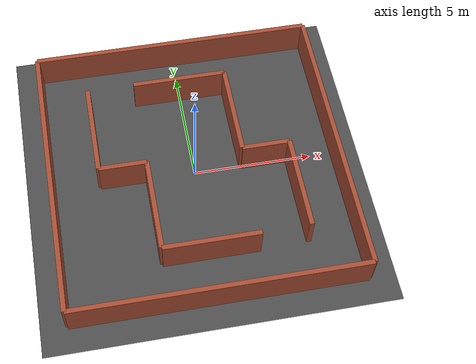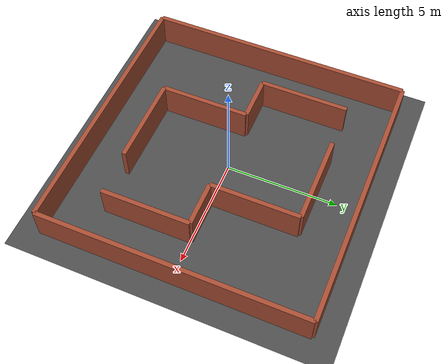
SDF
<?xml version="1.0" ?>
<sdf version="1.6">
  <world name="maze_world">
    <!-- Scene settings for realistic sky, clouds, and ambient lighting -->
    <scene>
      <sky>
        <time>12.0</time>
        <clouds>
          <speed>12</speed>
          <humidity>0.6</humidity>
          <mean_size>0.6</mean_size>
          <ambient>0.8 0.8 0.8 1.0</ambient>
        </clouds>
      </sky>
      <ambient>0.5 0.5 0.5 1.0</ambient>
      <background>0.5 0.7 0.9 1.0</background>
      <shadows>true</shadows>
    </scene>

    <!-- A global light source -->
    <include>
      <uri>model://sun</uri>
    </include>

    <!-- A ground plane with road texture -->
    <model name="road_ground_plane">
      <static>true</static>
      <link name="link">
        <collision name="collision">
          <geometry>
            <plane>
              <normal>0 0 1</normal>
              <size>100 100</size>
            </plane>
          </geometry>
          <surface>
            <contact>
              <collide_bitmask>0xffff</collide_bitmask>
            </contact>
            <friction>
              <ode>
                <mu>100</mu>
                <mu2>50</mu2>
              </ode>
            </friction>
          </surface>
        </collision>
        <visual name="visual">
          <cast_shadows>false</cast_shadows>
          <geometry>
            <plane>
              <normal>0 0 1</normal>
              <size>100 100</size>
            </plane>
          </geometry>
          <material>
            <script>
              <uri>model://autonomous_car/media/materials/scripts/road.material</uri>
              <name>Road/Asphalt</name>
            </script>
          </material>
        </visual>
      </link>
    </model>

    <!-- Outer Bounding Walls (Brick Texture) -->
    <!-- North Wall -->
    <model name="outer_north_wall">
      <static>true</static>
      <pose>6.0 0.0 0.75 0 0 0</pose>
      <link name="link">
        <collision name="collision">
          <geometry><box><size>0.2 12.0 1.5</size></box></geometry>
        </collision>
        <visual name="visual">
          <geometry><box><size>0.2 12.0 1.5</size></box></geometry>
          <material>
            <script>
              <uri>file://media/materials/scripts/gazebo.material</uri>
              <name>Gazebo/Bricks</name>
            </script>
          </material>
        </visual>
      </link>
    </model>

    <!-- South Wall -->
    <model name="outer_south_wall">
      <static>true</static>
      <pose>-6.0 0.0 0.75 0 0 0</pose>
      <link name="link">
        <collision name="collision">
          <geometry><box><size>0.2 12.0 1.5</size></box></geometry>
        </collision>
        <visual name="visual">
          <geometry><box><size>0.2 12.0 1.5</size></box></geometry>
          <material>
            <script>
              <uri>file://media/materials/scripts/gazebo.material</uri>
              <name>Gazebo/Bricks</name>
            </script>
          </material>
        </visual>
      </link>
    </model>

    <!-- East Wall -->
    <model name="outer_east_wall">
      <static>true</static>
      <pose>0.0 6.0 0.75 0 0 0</pose>
      <link name="link">
        <collision name="collision">
          <geometry><box><size>12.0 0.2 1.5</size></box></geometry>
        </collision>
        <visual name="visual">
          <geometry><box><size>12.0 0.2 1.5</size></box></geometry>
          <material>
            <script>
              <uri>file://media/materials/scripts/gazebo.material</uri>
              <name>Gazebo/Bricks</name>
            </script>
          </material>
        </visual>
      </link>
    </model>

    <!-- West Wall -->
    <model name="outer_west_wall">
      <static>true</static>
      <pose>0.0 -6.0 0.75 0 0 0</pose>
      <link name="link">
        <collision name="collision">
          <geometry><box><size>12.0 0.2 1.5</size></box></geometry>
        </collision>
        <visual name="visual">
          <geometry><box><size>12.0 0.2 1.5</size></box></geometry>
          <material>
            <script>
              <uri>file://media/materials/scripts/gazebo.material</uri>
              <name>Gazebo/Bricks</name>
            </script>
          </material>
        </visual>
      </link>
    </model>

    <!-- Inner Maze Walls (Brick Texture) -->
    <!-- Wall 1 (Vertical) -->
    <model name="inner_wall_1">
      <static>true</static>
      <pose>2.0 2.0 0.75 0 0 0</pose>
      <link name="link">
        <collision name="collision">
          <geometry><box><size>0.2 4.0 1.5</size></box></geometry>
        </collision>
        <visual name="visual">
          <geometry><box><size>0.2 4.0 1.5</size></box></geometry>
          <material>
            <script>
              <uri>file://media/materials/scripts/gazebo.material</uri>
              <name>Gazebo/Bricks</name>
            </script>
          </material>
        </visual>
      </link>
    </model>

    <!-- Wall 2 (Vertical) -->
    <model name="inner_wall_2">
      <static>true</static>
      <pose>-2.0 -2.0 0.75 0 0 0</pose>
      <link name="link">
        <collision name="collision">
          <geometry><box><size>0.2 4.0 1.5</size></box></geometry>
        </collision>
        <visual name="visual">
          <geometry><box><size>0.2 4.0 1.5</size></box></geometry>
          <material>
            <script>
              <uri>file://media/materials/scripts/gazebo.material</uri>
              <name>Gazebo/Bricks</name>
            </script>
          </material>
        </visual>
      </link>
    </model>

    <!-- Wall 3 (Vertical) -->
    <model name="inner_wall_3">
      <static>true</static>
      <pose>4.0 -2.0 0.75 0 0 0</pose>
      <link name="link">
        <collision name="collision">
          <geometry><box><size>0.2 4.0 1.5</size></box></geometry>
        </collision>
        <visual name="visual">
          <geometry><box><size>0.2 4.0 1.5</size></box></geometry>
          <material>
            <script>
              <uri>file://media/materials/scripts/gazebo.material</uri>
              <name>Gazebo/Bricks</name>
            </script>
          </material>
        </visual>
      </link>
    </model>

    <!-- Wall 4 (Vertical) -->
    <model name="inner_wall_4">
      <static>true</static>
      <pose>-4.0 2.0 0.75 0 0 0</pose>
      <link name="link">
        <collision name="collision">
          <geometry><box><size>0.2 4.0 1.5</size></box></geometry>
        </collision>
        <visual name="visual">
          <geometry><box><size>0.2 4.0 1.5</size></box></geometry>
          <material>
            <script>
              <uri>file://media/materials/scripts/gazebo.material</uri>
              <name>Gazebo/Bricks</name>
            </script>
          </material>
        </visual>
      </link>
    </model>

    <!-- Wall 5 (Horizontal) -->
    <model name="inner_wall_5">
      <static>true</static>
      <pose>0.0 4.0 0.75 0 0 0</pose>
      <link name="link">
        <collision name="collision">
          <geometry><box><size>4.0 0.2 1.5</size></box></geometry>
        </collision>
        <visual name="visual">
          <geometry><box><size>4.0 0.2 1.5</size></box></geometry>
          <material>
            <script>
              <uri>file://media/materials/scripts/gazebo.material</uri>
              <name>Gazebo/Bricks</name>
            </script>
          </material>
        </visual>
      </link>
    </model>

    <!-- Wall 6 (Horizontal) -->
    <model name="inner_wall_6">
      <static>true</static>
      <pose>0.0 -4.0 0.75 0 0 0</pose>
      <link name="link">
        <collision name="collision">
          <geometry><box><size>4.0 0.2 1.5</size></box></geometry>
        </collision>
        <visual name="visual">
          <geometry><box><size>4.0 0.2 1.5</size></box></geometry>
          <material>
            <script>
              <uri>file://media/materials/scripts/gazebo.material</uri>
              <name>Gazebo/Bricks</name>
            </script>
          </material>
        </visual>
      </link>
    </model>

    <!-- Wall 7 (Horizontal) -->
    <model name="inner_wall_7">
      <static>true</static>
      <pose>3.0 0.0 0.75 0 0 0</pose>
      <link name="link">
        <collision name="collision">
          <geometry><box><size>2.0 0.2 1.5</size></box></geometry>
        </collision>
        <visual name="visual">
          <geometry><box><size>2.0 0.2 1.5</size></box></geometry>
          <material>
            <script>
              <uri>file://media/materials/scripts/gazebo.material</uri>
              <name>Gazebo/Bricks</name>
            </script>
          </material>
        </visual>
      </link>
    </model>

    <!-- Wall 8 (Horizontal) -->
    <model name="inner_wall_8">
      <static>true</static>
      <pose>-3.0 0.0 0.75 0 0 0</pose>
      <link name="link">
        <collision name="collision">
          <geometry><box><size>2.0 0.2 1.5</size></box></geometry>
        </collision>
        <visual name="visual">
          <geometry><box><size>2.0 0.2 1.5</size></box></geometry>
          <material>
            <script>
              <uri>file://media/materials/scripts/gazebo.material</uri>
              <name>Gazebo/Bricks</name>
            </script>
          </material>
        </visual>
      </link>
    </model>

    <!-- Physics settings for faster or smoother simulation -->
    <physics type="ode">
      <real_time_update_rate>1000.0</real_time_update_rate>
      <max_step_size>0.001</max_step_size>
      <real_time_factor>1.0</real_time_factor>
    </physics>
  </world>
</sdf>
